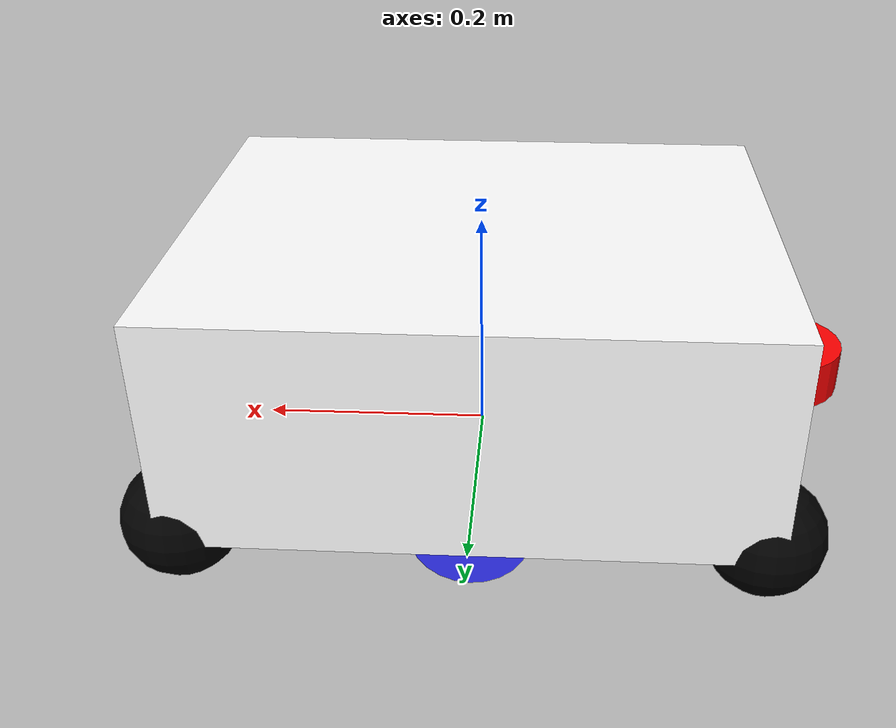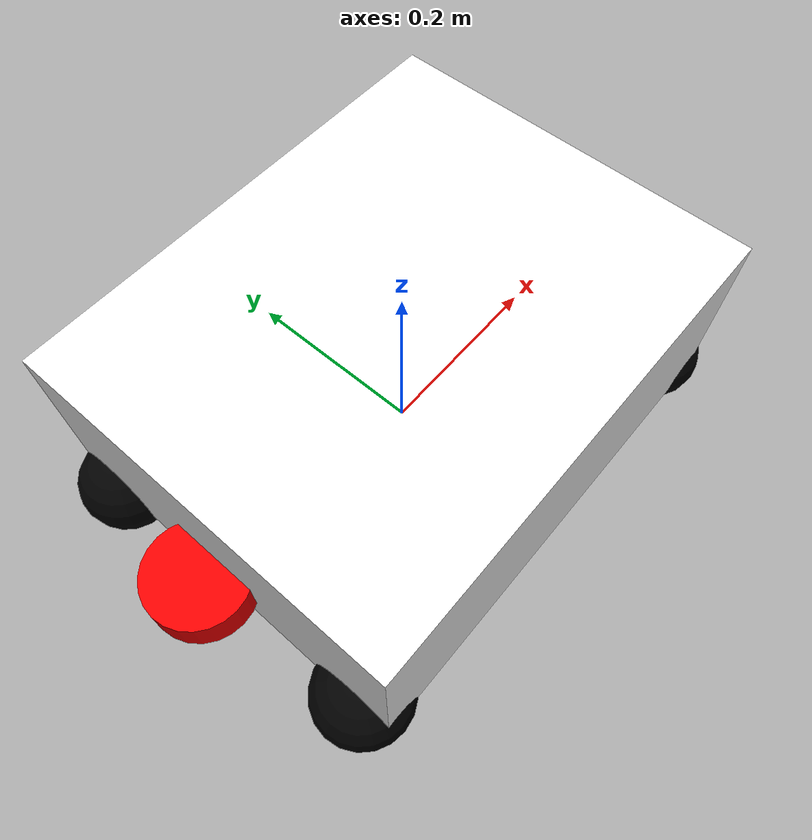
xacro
<?xml version="1.0"?>
<robot xmlns:xacro="http://www.ros.org/wiki/xacro" >

    <xacro:include filename="inertial_macros.xacro"/>

    <material name="white">
        <color rgba="1 1 1 1" />
    </material>

    <material name="orange">
        <color rgba="1 0.3 0.1 1"/>
    </material>

    <material name="blue">
        <color rgba="0.2 0.2 1 1"/>
    </material>

    <material name="black">
        <color rgba="0 0 0 1"/>
    </material>

    <material name="red">
        <color rgba="1 0 0 1"/>
    </material>

    <!-- BASE LINK -->

    <link name="base_link">

    </link>

    <!-- CHASSIS LINK -->

    <joint name="chassis_joint" type="fixed">
        <parent link="base_link"/>
        <child link="chassis"/>
        <origin xyz="0 0 0" rpy="0 0 0"/>
    </joint>

    <link name="chassis">
        <visual>
            <origin xyz="0 0 0.1"/>
            <geometry>
                <box size="0.5 0.4 0.2"/>
            </geometry>
            <material name="white"/>
        </visual>
        <collision>
            <origin xyz="0 0 0.1"/>
            <geometry>
                <box size="0.5 0.4 0.2"/>
            </geometry>
        </collision>
        <xacro:inertial_box mass="15.0" x="0.5" y="0.4" z="0.2">
            <origin xyz="0 0 0.1" rpy="0 0 0"/>
        </xacro:inertial_box>
    </link>

    <!-- LEFT WHEEL LINK -->

    <joint name="left_wheel_joint" type="continuous">
        <parent link="base_link"/>
        <child link="left_wheel"/>
        <origin xyz="0 0.16 0" rpy="-${pi/2} 0 0" />
        <axis xyz="0 0 1"/>
    </joint>

    <link name="left_wheel">
        <visual>
            <geometry>
                <cylinder radius="0.05" length="0.03"/>
            </geometry>
            <material name="blue"/>
        </visual>
        <collision>
            <geometry>
                <cylinder radius="0.05" length="0.03"/>
            </geometry>
        </collision>
        <xacro:inertial_cylinder mass="0.18" length="0.04" radius="0.05">
            <origin xyz="0 0 0" rpy="0 0 0"/>
        </xacro:inertial_cylinder>
    </link>

    <!-- RIGHT WHEEL LINK -->

    <joint name="right_wheel_joint" type="continuous">
        <parent link="base_link"/>
        <child link="right_wheel"/>
        <origin xyz="0 -0.16 0" rpy="${pi/2} 0 0" />
        <axis xyz="0 0 -1"/>
    </joint>

    <link name="right_wheel">
        <visual>
            <geometry>
                <cylinder radius="0.05" length="0.03"/>
            </geometry>
            <material name="blue"/>
        </visual>
        <collision>
            <geometry>
                <cylinder radius="0.05" length="0.03"/>
            </geometry>
        </collision>
        <xacro:inertial_cylinder mass="0.18" length="0.04" radius="0.05">
            <origin xyz="0 0 0" rpy="0 0 0"/>
        </xacro:inertial_cylinder>
    </link>

    <!-- laser link -->
        <joint name="laser_joint" type="fixed">
        <parent link="chassis"/>
        <child link="laser"/>
        <origin xyz="-0.27 0 0.07"/>
    </joint>

    <link name="laser">
        <visual>
            <geometry>
                <cylinder radius="0.05" length="0.04"/>
            </geometry>
            <material name="red"/>
        </visual>
        <visual>
            <origin xyz="0 0 -0.05"/>
            <geometry>
                <cylinder radius="0.01" length="0.1"/>
            </geometry>
            <material name="red"/>
        </visual>
        <collision>
            <geometry>
                <cylinder radius="0.05" length="0.04"/>
            </geometry>
        </collision>
        <xacro:inertial_cylinder mass="0.1" length="0.04" radius="0.05">
            <origin xyz="0 0 0" rpy="0 0 0"/>
        </xacro:inertial_cylinder>
    </link>

    <!-- CASTER WHEEL left up LINK -->

    <joint name="caster_wheel_left_up_joint" type="fixed">
        <parent link="chassis"/>
        <child link="caster_left_up_wheel"/>
        <origin xyz="0.24 0.16 0"/>
    </joint>

    <link name="caster_left_up_wheel">
        <visual>
            <geometry>
                <sphere radius="0.05"/>
            </geometry>
            <material name="black"/>
        </visual>
        <collision>
            <geometry>
                <sphere radius="0.05"/>
            </geometry>
        </collision>
        <xacro:inertial_sphere mass="0.15" radius="0.05">
            <origin xyz="0 0 0" />
        </xacro:inertial_sphere>
    </link>

        <!-- CASTER WHEEL left down LINK -->

    <joint name="caster_wheel_left_down_joint" type="fixed">
        <parent link="chassis"/>
        <child link="caster_left_down_wheel"/>
        <origin xyz="-0.24 0.16 0"/>
    </joint>

    <link name="caster_left_down_wheel">
        <visual>
            <geometry>
                <sphere radius="0.05"/>
            </geometry>
            <material name="black"/>
        </visual>
        <collision>
            <geometry>
                <sphere radius="0.05"/>
            </geometry>
        </collision>
        <xacro:inertial_sphere mass="0.15" radius="0.05">
            <origin xyz="0 0 0" rpy="0 0 0"/>
        </xacro:inertial_sphere>
    </link>

        <!-- CASTER WHEEL right up LINK -->

    <joint name="caster_wheel_left_right_up_joint" type="fixed">
        <parent link="chassis"/>
        <child link="caster_right_up_wheel"/>
        <origin xyz="0.24 -0.16 0"/>
    </joint>

    <link name="caster_right_up_wheel">
        <visual>
            <geometry>
                <sphere radius="0.05"/>
            </geometry>
            <material name="black"/>
        </visual>
        <collision>
            <geometry>
                <sphere radius="0.05"/>
            </geometry>
        </collision>
        <xacro:inertial_sphere mass="0.15" radius="0.05">
            <origin xyz="0 0 0" rpy="0 0 0"/>
        </xacro:inertial_sphere>
    </link>

        <!-- CASTER WHEEL right down LINK -->

    <joint name="caster_wheel_left_right_down_joint" type="fixed">
        <parent link="chassis"/>
        <child link="caster_right_down_wheel"/>
        <origin xyz="-0.24 -0.16 0"/>
    </joint>

    <link name="caster_right_down_wheel">
        <visual>
            <geometry>
                <sphere radius="0.05"/>
            </geometry>
            <material name="black"/>
        </visual>
        <collision>
            <geometry>
                <sphere radius="0.05"/>
            </geometry>
        </collision>
        <xacro:inertial_sphere mass="0.15" radius="0.05">
            <origin xyz="0 0 0" rpy="0 0 0"/>
        </xacro:inertial_sphere>
    </link>
</robot>
